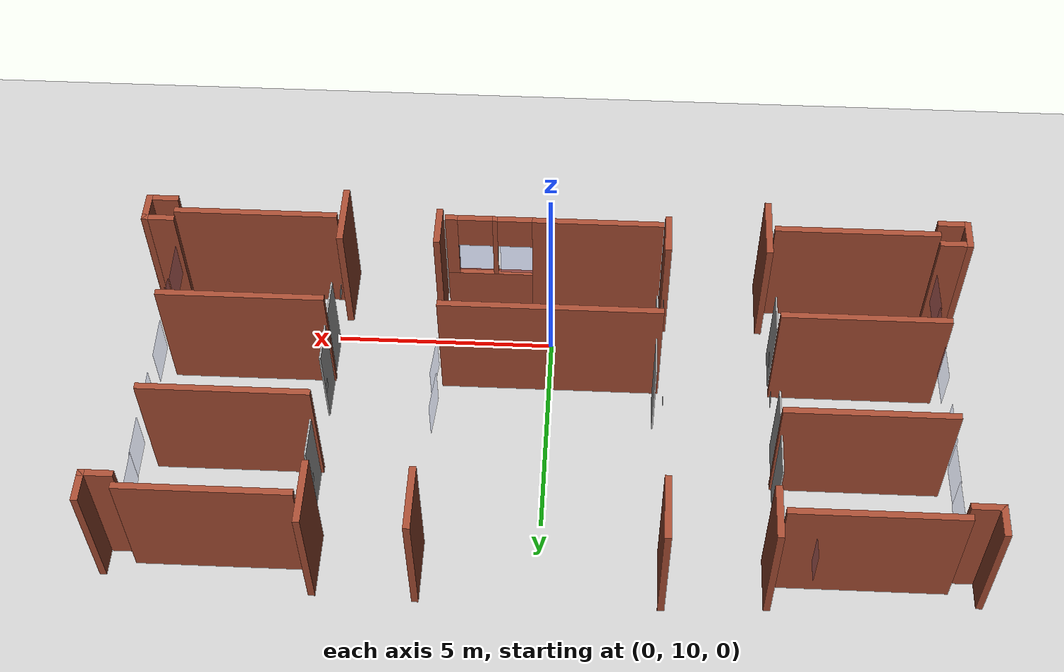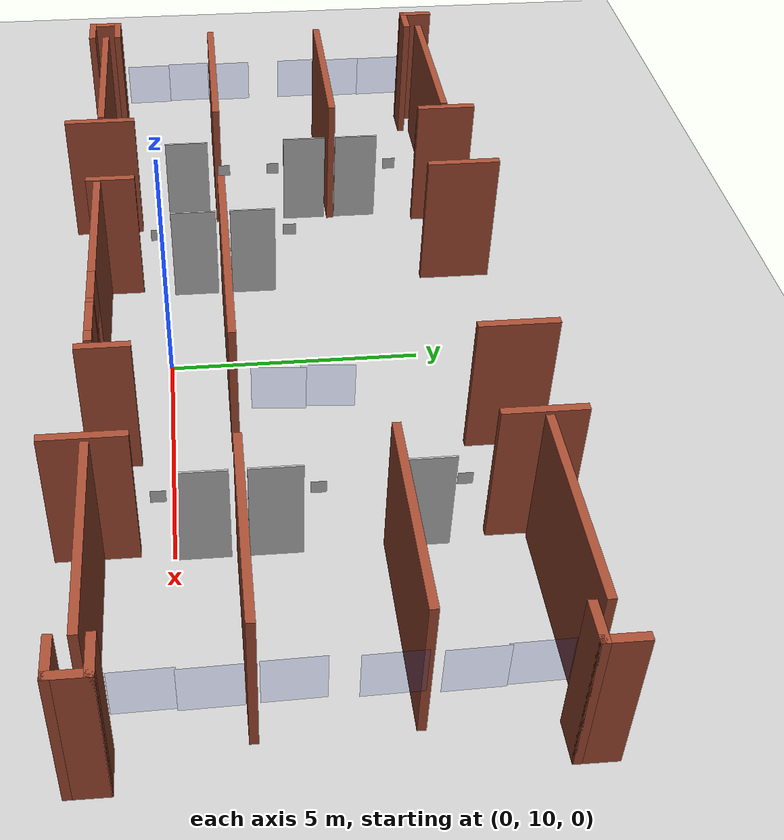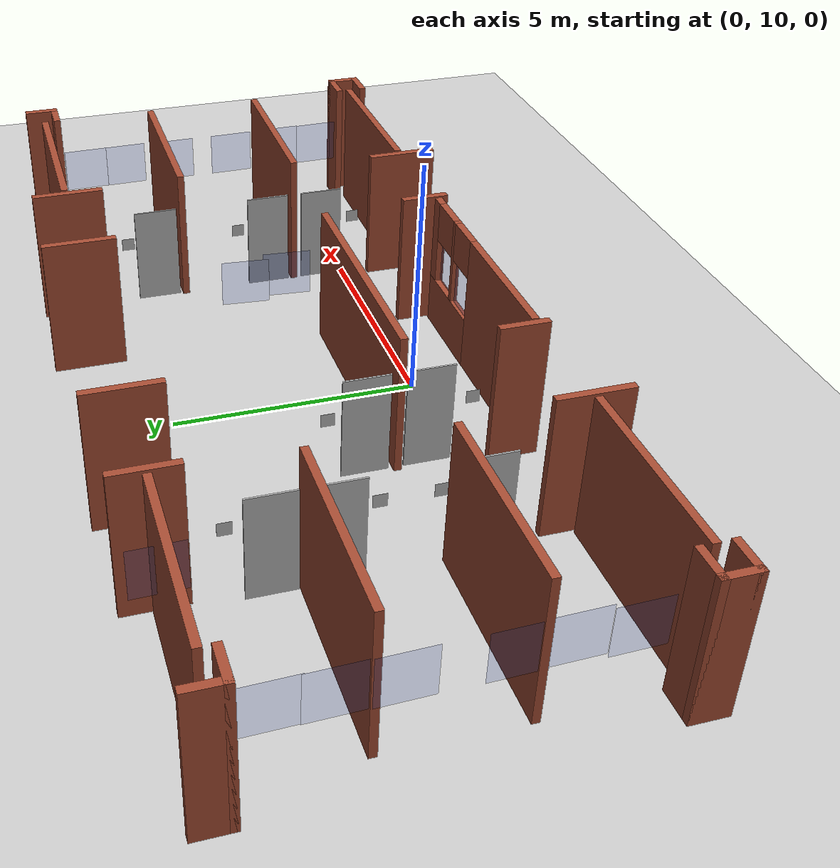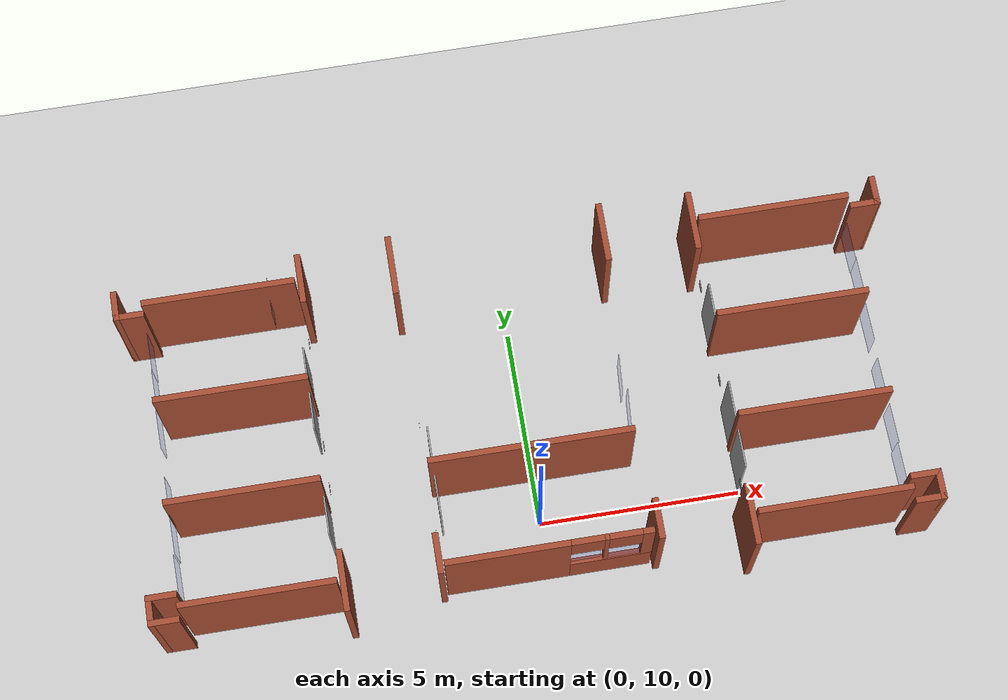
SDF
<sdf version="1.6">
 <world name="default">
  <model name="ground_plane">
   <static>1</static>
   <link name="link">
    <collision name="collision">
     <geometry><plane><normal>0 0 1</normal><size>100 100</size></plane></geometry>
     <surface><friction><ode><mu>100</mu><mu2>50</mu2></ode></friction></surface>
    </collision>
    <visual name="visual">
     <cast_shadows>0</cast_shadows>
     <geometry><plane><normal>0 0 1</normal><size>100 100</size></plane></geometry>
     <material>
      <script><uri>file://media/materials/scripts/gazebo.material</uri><name>Gazebo/Grey</name></script>
     </material>
    </visual>
   </link>
  </model>
  <model name="UNFRGS_INF_-_Predio_73">
   <pose>-0.02513 1.0401 -0.009 0 -0 0</pose>
   <link name="Wall_110">
    <collision name="Wall_110_Collision">
     <geometry><box><size>3.75 0.15 2.96</size></box></geometry>
     <pose>0 0 1.48 0 -0 0</pose>
    </collision>
    <visual name="Wall_110_Visual">
     <pose>0 0 1.48 0 -0 0</pose>
     <geometry><box><size>3.75 0.15 2.96</size></box></geometry>
     <material>
      <script><uri>file://media/materials/scripts/gazebo.material</uri><name>Gazebo/Bricks</name></script>
      <ambient>0.929412 1 0.760784 1</ambient>
     </material>
     <meta><layer>0</layer></meta>
    </visual>
    <pose>-6.88513 15.1948 0 0 -0 0</pose>
   </link>
   <link name="Wall_112">
    <collision name="Wall_112_Collision">
     <geometry><box><size>3.75 0.15 2.96</size></box></geometry>
     <pose>0 0 1.48 0 -0 0</pose>
    </collision>
    <visual name="Wall_112_Visual">
     <pose>0 0 1.48 0 -0 0</pose>
     <geometry><box><size>3.75 0.15 2.96</size></box></geometry>
     <material>
      <script><uri>file://media/materials/scripts/gazebo.material</uri><name>Gazebo/Bricks</name></script>
      <ambient>0.929412 1 0.760784 1</ambient>
     </material>
     <meta><layer>0</layer></meta>
    </visual>
    <pose>6.85987 15.2218 0 0 -0 0</pose>
   </link>
   <link name="Wall_114">
    <collision name="Wall_114_Collision">
     <geometry><box><size>1.25 0.15 2.96</size></box></geometry>
     <pose>0 0 1.48 0 -0 0</pose>
    </collision>
    <visual name="Wall_114_Visual">
     <pose>0 0 1.48 0 -0 0</pose>
     <geometry><box><size>1.25 0.15 2.96</size></box></geometry>
     <material>
      <script><uri>file://media/materials/scripts/gazebo.material</uri><name>Gazebo/Bricks</name></script>
      <ambient>0.929412 1 0.760784 1</ambient>
     </material>
     <meta><layer>0</layer></meta>
    </visual>
    <pose>-4.87113 15.2208 0 0 0 -1.5708</pose>
   </link>
   <link name="Wall_116">
    <collision name="Wall_116_Collision">
     <geometry><box><size>1.5 0.15 2.96</size></box></geometry>
     <pose>0 0 1.48 0 -0 0</pose>
    </collision>
    <visual name="Wall_116_Visual">
     <pose>0 0 1.48 0 -0 0</pose>
     <geometry><box><size>1.5 0.15 2.96</size></box></geometry>
     <material>
      <script><uri>file://media/materials/scripts/gazebo.material</uri><name>Gazebo/Bricks</name></script>
      <ambient>0.929412 1 0.760784 1</ambient>
     </material>
     <meta><layer>0</layer></meta>
    </visual>
    <pose>-2.62213 15.2058 0 0 0 -1.5708</pose>
   </link>
   <link name="Wall_118">
    <collision name="Wall_118_Collision">
     <geometry><box><size>1.5 0.15 2.96</size></box></geometry>
     <pose>0 0 1.48 0 -0 0</pose>
    </collision>
    <visual name="Wall_118_Visual">
     <pose>0 0 1.48 0 -0 0</pose>
     <geometry><box><size>1.5 0.15 2.96</size></box></geometry>
     <material>
      <script><uri>file://media/materials/scripts/gazebo.material</uri><name>Gazebo/Bricks</name></script>
      <ambient>0.929412 1 0.760784 1</ambient>
     </material>
     <meta><layer>0</layer></meta>
    </visual>
    <pose>2.61787 15.2302 0 0 0 -1.5708</pose>
   </link>
   <link name="Wall_120">
    <collision name="Wall_120_Collision">
     <geometry><box><size>1.5 0.15 2.96</size></box></geometry>
     <pose>0 0 1.48 0 -0 0</pose>
    </collision>
    <visual name="Wall_120_Visual">
     <pose>0 0 1.48 0 -0 0</pose>
     <geometry><box><size>1.5 0.15 2.96</size></box></geometry>
     <material>
      <script><uri>file://media/materials/scripts/gazebo.material</uri><name>Gazebo/Bricks</name></script>
      <ambient>0.929412 1 0.760784 1</ambient>
     </material>
     <meta><layer>0</layer></meta>
    </visual>
    <pose>4.84087 15.1778 0 0 0 -1.5708</pose>
   </link>
   <link name="Wall_122">
    <collision name="Wall_122_Collision">
     <geometry><box><size>3.75 0.15 2.96</size></box></geometry>
     <pose>0 0 1.48 0 -0 0</pose>
    </collision>
    <visual name="Wall_122_Visual">
     <pose>0 0 1.48 0 -0 0</pose>
     <geometry><box><size>3.75 0.15 2.96</size></box></geometry>
     <material>
      <script><uri>file://media/materials/scripts/gazebo.material</uri><name>Gazebo/Bricks</name></script>
      <ambient>0.929412 1 0.760784 1</ambient>
     </material>
     <meta><layer>0</layer></meta>
    </visual>
    <pose>6.83287 12.6978 0 0 -0 0</pose>
   </link>
   <link name="Wall_124">
    <collision name="Wall_124_Collision">
     <geometry><box><size>3.75 0.15 2.96</size></box></geometry>
     <pose>0 0 1.48 0 -0 0</pose>
    </collision>
    <visual name="Wall_124_Visual">
     <pose>0 0 1.48 0 -0 0</pose>
     <geometry><box><size>3.75 0.15 2.96</size></box></geometry>
     <material>
      <script><uri>file://media/materials/scripts/gazebo.material</uri><name>Gazebo/Bricks</name></script>
      <ambient>0.929412 1 0.760784 1</ambient>
     </material>
     <meta><layer>0</layer></meta>
    </visual>
    <pose>-6.88513 12.6978 0 0 -0 0</pose>
   </link>
   <link name="Wall_126">
    <collision name="Wall_126_Collision">
     <geometry><box><size>3.75 0.15 2.96</size></box></geometry>
     <pose>0 0 1.48 0 -0 0</pose>
    </collision>
    <visual name="Wall_126_Visual">
     <pose>0 0 1.48 0 -0 0</pose>
     <geometry><box><size>3.75 0.15 2.96</size></box></geometry>
     <material>
      <script><uri>file://media/materials/scripts/gazebo.material</uri><name>Gazebo/Bricks</name></script>
      <ambient>0.929412 1 0.760784 1</ambient>
     </material>
     <meta><layer>0</layer></meta>
    </visual>
    <pose>6.85987 10.1188 0 0 -0 0</pose>
   </link>
   <link name="Wall_128">
    <collision name="Wall_128_Collision">
     <geometry><box><size>3.75 0.15 2.96</size></box></geometry>
     <pose>0 0 1.48 0 -0 0</pose>
    </collision>
    <visual name="Wall_128_Visual">
     <pose>0 0 1.48 0 -0 0</pose>
     <geometry><box><size>3.75 0.15 2.96</size></box></geometry>
     <material>
      <script><uri>file://media/materials/scripts/gazebo.material</uri><name>Gazebo/Bricks</name></script>
      <ambient>0.929412 1 0.760784 1</ambient>
     </material>
     <meta><layer>0</layer></meta>
    </visual>
    <pose>-6.88513 7.62278 0 0 -0 0</pose>
   </link>
   <link name="Wall_130">
    <collision name="Wall_130_Collision">
     <geometry><box><size>1 0.15 2.96</size></box></geometry>
     <pose>0 0 1.48 0 -0 0</pose>
    </collision>
    <visual name="Wall_130_Visual">
     <pose>0 0 1.48 0 -0 0</pose>
     <geometry><box><size>1 0.15 2.96</size></box></geometry>
     <material>
      <script><uri>file://media/materials/scripts/gazebo.material</uri><name>Gazebo/Bricks</name></script>
      <ambient>0.929412 1 0.760784 1</ambient>
     </material>
     <meta><layer>0</layer></meta>
    </visual>
    <pose>2.64587 7.88278 0 0 0 -1.5708</pose>
   </link>
   <link name="Wall_132">
    <collision name="Wall_132_Collision">
     <geometry><box><size>1 0.15 2.96</size></box></geometry>
     <pose>0 0 1.48 0 -0 0</pose>
    </collision>
    <visual name="Wall_132_Visual">
     <pose>0 0 1.48 0 -0 0</pose>
     <geometry><box><size>1 0.15 2.96</size></box></geometry>
     <material>
      <script><uri>file://media/materials/scripts/gazebo.material</uri><name>Gazebo/Bricks</name></script>
      <ambient>0.929412 1 0.760784 1</ambient>
     </material>
     <meta><layer>0</layer></meta>
    </visual>
    <pose>-2.59413 7.88278 0 0 0 -1.5708</pose>
   </link>
   <link name="Wall_134">
    <collision name="Wall_134_Collision">
     <geometry><box><size>3.75 0.15 2.96</size></box></geometry>
     <pose>0 0 1.48 0 -0 0</pose>
    </collision>
    <visual name="Wall_134_Visual">
     <pose>0 0 1.48 0 -0 0</pose>
     <geometry><box><size>3.75 0.15 2.96</size></box></geometry>
     <material>
      <script><uri>file://media/materials/scripts/gazebo.material</uri><name>Gazebo/Bricks</name></script>
      <ambient>0.929412 1 0.760784 1</ambient>
     </material>
     <meta><layer>0</layer></meta>
    </visual>
    <pose>6.85987 7.67678 0 0 -0 0</pose>
   </link>
   <link name="Wall_167">
    <collision name="Wall_167_Collision">
     <geometry><box><size>1.5 0.15 2.96</size></box></geometry>
     <pose>0 0 1.48 0 -0 0</pose>
    </collision>
    <visual name="Wall_167_Visual">
     <pose>0 0 1.48 0 -0 0</pose>
     <geometry><box><size>1.5 0.15 2.96</size></box></geometry>
     <material>
      <script><uri>file://media/materials/scripts/gazebo.material</uri><name>Gazebo/Bricks</name></script>
      <ambient>0.929412 1 0.760784 1</ambient>
     </material>
     <meta><layer>0</layer></meta>
    </visual>
    <pose>-4.87113 7.59878 0 0 0 -1.5708</pose>
   </link>
   <link name="Wall_169">
    <collision name="Wall_169_Collision">
     <geometry><box><size>1.5 0.15 2.96</size></box></geometry>
     <pose>0 0 1.48 0 -0 0</pose>
    </collision>
    <visual name="Wall_169_Visual">
     <pose>0 0 1.48 0 -0 0</pose>
     <geometry><box><size>1.5 0.15 2.96</size></box></geometry>
     <material>
      <script><uri>file://media/materials/scripts/gazebo.material</uri><name>Gazebo/Bricks</name></script>
      <ambient>0.929412 1 0.760784 1</ambient>
     </material>
     <meta><layer>0</layer></meta>
    </visual>
    <pose>4.84687 7.63078 0 0 0 -1.5708</pose>
   </link>
   <link name="Wall_250">
    <collision name="Wall_250_Collision">
     <geometry><box><size>3.75 0.15 2.96</size></box></geometry>
     <pose>0 0 1.48 0 -0 0</pose>
    </collision>
    <visual name="Wall_250_Visual">
     <pose>0 0 1.48 0 -0 0</pose>
     <geometry><box><size>3.75 0.15 2.96</size></box></geometry>
     <material>
      <script><uri>file://media/materials/scripts/gazebo.material</uri><name>Gazebo/Bricks</name></script>
      <ambient>0.929412 1 0.760784 1</ambient>
     </material>
     <meta><layer>0</layer></meta>
    </visual>
    <pose>-6.93013 10.1328 0 0 -0 0</pose>
   </link>
   <link name="Wall_700">
    <collision name="Wall_700_Collision">
     <geometry><box><size>0.75 0.15 2.96</size></box></geometry>
     <pose>0 0 1.48 0 -0 0</pose>
    </collision>
    <visual name="Wall_700_Visual">
     <pose>0 0 1.48 0 -0 0</pose>
     <geometry><box><size>0.75 0.15 2.96</size></box></geometry>
     <material>
      <script><uri>file://media/materials/scripts/gazebo.material</uri><name>Gazebo/Bricks</name></script>
      <ambient>0.498039 0.498039 0.498039 1</ambient>
     </material>
     <meta><layer>0</layer></meta>
    </visual>
    <pose>-9.09213 7.89878 0 0 -0 3.14159</pose>
   </link>
   <link name="Wall_701">
    <collision name="Wall_701_Collision">
     <geometry><box><size>0.750269 0.15 2.96</size></box></geometry>
     <pose>0 0 1.48 0 -0 0</pose>
    </collision>
    <visual name="Wall_701_Visual">
     <pose>0 0 1.48 0 -0 0</pose>
     <geometry><box><size>0.750269 0.15 2.96</size></box></geometry>
     <material>
      <script><uri>file://media/materials/scripts/gazebo.material</uri><name>Gazebo/Bricks</name></script>
      <ambient>0.498039 0.498039 0.498039 1</ambient>
     </material>
     <meta><layer>0</layer></meta>
    </visual>
    <pose>-9.39213 7.59878 0 0 0 -1.5708</pose>
   </link>
   <link name="Wall_702">
    <collision name="Wall_702_Collision">
     <geometry><box><size>0.75 0.15 2.96</size></box></geometry>
     <pose>0 0 1.48 0 -0 0</pose>
    </collision>
    <visual name="Wall_702_Visual">
     <pose>0 0 1.48 0 -0 0</pose>
     <geometry><box><size>0.75 0.15 2.96</size></box></geometry>
     <material>
      <script><uri>file://media/materials/scripts/gazebo.material</uri><name>Gazebo/Bricks</name></script>
      <ambient>0.498039 0.498039 0.498039 1</ambient>
     </material>
     <meta><layer>0</layer></meta>
    </visual>
    <pose>-9.09213 7.29878 0 0 -0 0</pose>
   </link>
   <link name="Wall_705">
    <collision name="Wall_705_Collision">
     <geometry><box><size>0.75 0.15 2.96</size></box></geometry>
     <pose>0 0 1.48 0 -0 0</pose>
    </collision>
    <visual name="Wall_705_Visual">
     <pose>0 0 1.48 0 -0 0</pose>
     <geometry><box><size>0.75 0.15 2.96</size></box></geometry>
     <material>
      <script><uri>file://media/materials/scripts/gazebo.material</uri><name>Gazebo/Bricks</name></script>
      <ambient>0.498039 0.498039 0.498039 1</ambient>
     </material>
     <meta><layer>0</layer></meta>
    </visual>
    <pose>-9.39213 15.2228 0 0 0 -1.5708</pose>
   </link>
   <link name="Wall_706">
    <collision name="Wall_706_Collision">
     <geometry><box><size>0.75 0.15 2.96</size></box></geometry>
     <pose>0 0 1.48 0 -0 0</pose>
    </collision>
    <visual name="Wall_706_Visual">
     <pose>0 0 1.48 0 -0 0</pose>
     <geometry><box><size>0.75 0.15 2.96</size></box></geometry>
     <material>
      <script><uri>file://media/materials/scripts/gazebo.material</uri><name>Gazebo/Bricks</name></script>
      <ambient>0.498039 0.498039 0.498039 1</ambient>
     </material>
     <meta><layer>0</layer></meta>
    </visual>
    <pose>-9.09213 14.9228 0 0 -0 0</pose>
   </link>
   <link name="Wall_709">
    <collision name="Wall_709_Collision">
     <geometry><box><size>0.75 0.15 2.96</size></box></geometry>
     <pose>0 0 1.48 0 -0 0</pose>
    </collision>
    <visual name="Wall_709_Visual">
     <pose>0 0 1.48 0 -0 0</pose>
     <geometry><box><size>0.75 0.15 2.96</size></box></geometry>
     <material>
      <script><uri>file://media/materials/scripts/gazebo.material</uri><name>Gazebo/Bricks</name></script>
      <ambient>0.498039 0.498039 0.498039 1</ambient>
     </material>
     <meta><layer>0</layer></meta>
    </visual>
    <pose>9.39287 15.2368 0 0 0 -1.5708</pose>
   </link>
   <link name="Wall_710">
    <collision name="Wall_710_Collision">
     <geometry><box><size>0.75 0.15 2.96</size></box></geometry>
     <pose>0 0 1.48 0 -0 0</pose>
    </collision>
    <visual name="Wall_710_Visual">
     <pose>0 0 1.48 0 -0 0</pose>
     <geometry><box><size>0.75 0.15 2.96</size></box></geometry>
     <material>
      <script><uri>file://media/materials/scripts/gazebo.material</uri><name>Gazebo/Bricks</name></script>
      <ambient>0.498039 0.498039 0.498039 1</ambient>
     </material>
     <meta><layer>0</layer></meta>
    </visual>
    <pose>9.09287 14.9368 0 0 -0 3.14159</pose>
   </link>
   <link name="Wall_712">
    <collision name="Wall_712_Collision">
     <geometry><box><size>0.75 0.15 2.96</size></box></geometry>
     <pose>0 0 1.48 0 -0 0</pose>
    </collision>
    <visual name="Wall_712_Visual">
     <pose>0 0 1.48 0 -0 0</pose>
     <geometry><box><size>0.75 0.15 2.96</size></box></geometry>
     <material>
      <script><uri>file://media/materials/scripts/gazebo.material</uri><name>Gazebo/Bricks</name></script>
      <ambient>0.498039 0.498039 0.498039 1</ambient>
     </material>
     <meta><layer>0</layer></meta>
    </visual>
    <pose>9.06387 7.92778 0 0 -0 0</pose>
   </link>
   <link name="Wall_713">
    <collision name="Wall_713_Collision">
     <geometry><box><size>0.75 0.15 2.96</size></box></geometry>
     <pose>0 0 1.48 0 -0 0</pose>
    </collision>
    <visual name="Wall_713_Visual">
     <pose>0 0 1.48 0 -0 0</pose>
     <geometry><box><size>0.75 0.15 2.96</size></box></geometry>
     <material>
      <script><uri>file://media/materials/scripts/gazebo.material</uri><name>Gazebo/Bricks</name></script>
      <ambient>0.498039 0.498039 0.498039 1</ambient>
     </material>
     <meta><layer>0</layer></meta>
    </visual>
    <pose>9.36387 7.62778 0 0 0 -1.5708</pose>
   </link>
   <link name="Wall_714">
    <collision name="Wall_714_Collision">
     <geometry><box><size>0.75 0.15 2.96</size></box></geometry>
     <pose>0 0 1.48 0 -0 0</pose>
    </collision>
    <visual name="Wall_714_Visual">
     <pose>0 0 1.48 0 -0 0</pose>
     <geometry><box><size>0.75 0.15 2.96</size></box></geometry>
     <material>
      <script><uri>file://media/materials/scripts/gazebo.material</uri><name>Gazebo/Bricks</name></script>
      <ambient>0.498039 0.498039 0.498039 1</ambient>
     </material>
     <meta><layer>0</layer></meta>
    </visual>
    <pose>9.06387 7.32778 0 0 -0 3.14159</pose>
   </link>
   <link name="Wall_76">
    <pose>0.009867 7.62278 0 0 -0 0</pose>
    <visual name="Wall_76_Visual_0">
     <pose>-0.99541 0 1.48 0 -0 0</pose>
     <geometry><box><size>3.00918 0.15 2.96</size></box></geometry>
     <material>
      <script><uri>file://media/materials/scripts/gazebo.material</uri><name>Gazebo/Bricks</name></script>
      <ambient>0.929412 1 0.760784 1</ambient>
     </material>
     <meta><layer>0</layer></meta>
    </visual>
    <collision name="Wall_76_Collision_0">
     <geometry><box><size>3.00918 0.15 2.96</size></box></geometry>
     <pose>-0.99541 0 1.48 0 -0 0</pose>
    </collision>
    <visual name="Wall_76_Visual_1">
     <pose>1.50459 0 0.55 0 -0 0</pose>
     <geometry><box><size>1.99082 0.15 1.11</size></box></geometry>
     <material>
      <script><uri>file://media/materials/scripts/gazebo.material</uri><name>Gazebo/Bricks</name></script>
      <ambient>0.929412 1 0.760784 1</ambient>
     </material>
     <meta><layer>0</layer></meta>
    </visual>
    <collision name="Wall_76_Collision_1">
     <geometry><box><size>1.99082 0.15 1.11</size></box></geometry>
     <pose>1.50459 0 0.55 0 -0 0</pose>
    </collision>
    <visual name="Wall_76_Visual_2">
     <pose>1.36359 0 2.03 0 -0 0</pose>
     <geometry><box><size>0.108823 0.15 1.86</size></box></geometry>
     <material>
      <script><uri>file://media/materials/scripts/gazebo.material</uri><name>Gazebo/Bricks</name></script>
      <ambient>0.929412 1 0.760784 1</ambient>
     </material>
     <meta><layer>0</layer></meta>
    </visual>
    <collision name="Wall_76_Collision_2">
     <geometry><box><size>0.108823 0.15 1.86</size></box></geometry>
     <pose>1.36359 0 2.03 0 -0 0</pose>
    </collision>
    <visual name="Wall_76_Visual_3">
     <pose>2.359 0 2.03 0 -0 0</pose>
     <geometry><box><size>0.281997 0.15 1.86</size></box></geometry>
     <material>
      <script><uri>file://media/materials/scripts/gazebo.material</uri><name>Gazebo/Bricks</name></script>
      <ambient>0.929412 1 0.760784 1</ambient>
     </material>
     <meta><layer>0</layer></meta>
    </visual>
    <collision name="Wall_76_Collision_3">
     <geometry><box><size>0.281997 0.15 1.86</size></box></geometry>
     <pose>2.359 0 2.03 0 -0 0</pose>
    </collision>
    <visual name="Wall_76_Visual_4">
     <pose>0.90918 0 2.53 0 -0 0</pose>
     <geometry><box><size>0.8 0.15 0.86</size></box></geometry>
     <material>
      <script><uri>file://media/materials/scripts/gazebo.material</uri><name>Gazebo/Bricks</name></script>
      <ambient>0.929412 1 0.760784 1</ambient>
     </material>
     <meta><layer>0</layer></meta>
    </visual>
    <collision name="Wall_76_Collision_4">
     <geometry><box><size>0.8 0.15 0.86</size></box></geometry>
     <pose>0.90918 0 2.53 0 -0 0</pose>
    </collision>
    <visual name="Wall_76_Visual_5">
     <pose>1.818 0 2.53 0 -0 0</pose>
     <geometry><box><size>0.8 0.15 0.86</size></box></geometry>
     <material>
      <script><uri>file://media/materials/scripts/gazebo.material</uri><name>Gazebo/Bricks</name></script>
      <ambient>0.929412 1 0.760784 1</ambient>
     </material>
     <meta><layer>0</layer></meta>
    </visual>
    <collision name="Wall_76_Collision_5">
     <geometry><box><size>0.8 0.15 0.86</size></box></geometry>
     <pose>1.818 0 2.53 0 -0 0</pose>
    </collision>
   </link>
   <link name="Wall_78">
    <collision name="Wall_78_Collision">
     <geometry><box><size>5 0.15 2.96</size></box></geometry>
     <pose>0 0 1.48 0 -0 0</pose>
    </collision>
    <visual name="Wall_78_Visual">
     <pose>0 0 1.48 0 -0 0</pose>
     <geometry><box><size>5 0.15 2.96</size></box></geometry>
     <material>
      <script><uri>file://media/materials/scripts/gazebo.material</uri><name>Gazebo/Bricks</name></script>
      <ambient>0.929412 1 0.760784 1</ambient>
     </material>
     <meta><layer>0</layer></meta>
    </visual>
    <pose>-0.005133 10.1468 0 0 -0 0</pose>
   </link>
   <static>1</static>
  </model>
  <model name="placa_215">
   <pose>4.88 15 1.48209 0 -0 1.57</pose>
   <static>1</static>
   <link name="link">
    <collision name="collision"><geometry><box><size>0.268 0.001 0.268</size></box></geometry></collision>
    <visual name="visual">
     <geometry><box><size>0.268 0.001 0.268</size></box></geometry>
     <material>
      <script>
       <uri>model://Placa_215/Materials/Scripts</uri>
       <uri>model://Placa_215/Materials/Textures</uri>
       <name>TexturaPlaca_215/Image</name>
      </script>
     </material>
    </visual>
   </link>
  </model>
  <model name="placa_216">
   <pose>-4.96 15.05 1.48208 0 -0 1.57</pose>
   <static>1</static>
   <link name="link">
    <collision name="collision"><geometry><box><size>0.268 0.001 0.268</size></box></geometry></collision>
    <visual name="visual">
     <geometry><box><size>0.268 0.001 0.268</size></box></geometry>
     <material>
      <script>
       <uri>model://Placa_216/Materials/Scripts</uri>
       <uri>model://Placa_216/Materials/Textures</uri>
       <name>TexturaPlaca_216/Image</name>
      </script>
     </material>
    </visual>
   </link>
  </model>
  <model name="placa_217">
   <pose>4.88 12.5 1.48209 0 -0 1.57</pose>
   <static>1</static>
   <link name="link">
    <collision name="collision"><geometry><box><size>0.268 0.001 0.268</size></box></geometry></collision>
    <visual name="visual">
     <geometry><box><size>0.268 0.001 0.268</size></box></geometry>
     <material>
      <script>
       <uri>model://Placa_217/Materials/Scripts</uri>
       <uri>model://Placa_217/Materials/Textures</uri>
       <name>TexturaPlaca_217/Image</name>
      </script>
     </material>
    </visual>
   </link>
  </model>
  <model name="placa_218">
   <pose>-4.96 12.4 1.48208 0 -0 1.57</pose>
   <static>1</static>
   <link name="link">
    <collision name="collision"><geometry><box><size>0.268 0.001 0.268</size></box></geometry></collision>
    <visual name="visual">
     <geometry><box><size>0.268 0.001 0.268</size></box></geometry>
     <material>
      <script>
       <uri>model://Placa_218/Materials/Scripts</uri>
       <uri>model://Placa_218/Materials/Textures</uri>
       <name>TexturaPlaca_218/Image</name>
      </script>
     </material>
    </visual>
   </link>
  </model>
  <model name="placa_219">
   <pose>4.88 9.8 1.48209 0 -0 1.57</pose>
   <static>1</static>
   <link name="link">
    <collision name="collision"><geometry><box><size>0.268 0.001 0.268</size></box></geometry></collision>
    <visual name="visual">
     <geometry><box><size>0.268 0.001 0.268</size></box></geometry>
     <material>
      <script>
       <uri>model://Placa_219/Materials/Scripts</uri>
       <uri>model://Placa_219/Materials/Textures</uri>
       <name>TexturaPlaca_219/Image</name>
      </script>
     </material>
    </visual>
   </link>
  </model>
  <model name="placa_220">
   <pose>-2.58 12.6 1.48209 0 -0 1.57</pose>
   <static>1</static>
   <link name="link">
    <collision name="collision"><geometry><box><size>0.268 0.001 0.268</size></box></geometry></collision>
    <visual name="visual">
     <geometry><box><size>0.268 0.001 0.268</size></box></geometry>
     <material>
      <script>
       <uri>model://Placa_220/Materials/Scripts</uri>
       <uri>model://Placa_220/Materials/Textures</uri>
       <name>TexturaPlaca_220/Image</name>
      </script>
     </material>
    </visual>
   </link>
  </model>
  <model name="placa_222">
   <pose>-4.96 11.3 1.48208 0 -0 1.57</pose>
   <static>1</static>
   <link name="link">
    <collision name="collision"><geometry><box><size>0.268 0.001 0.268</size></box></geometry></collision>
    <visual name="visual">
     <geometry><box><size>0.268 0.001 0.268</size></box></geometry>
     <material>
      <script>
       <uri>model://Placa_222/Materials/Scripts</uri>
       <uri>model://Placa_222/Materials/Textures</uri>
       <name>TexturaPlaca_222/Image</name>
      </script>
     </material>
    </visual>
   </link>
  </model>
  <model name="placa_224">
   <pose>-2.58 9.8 1.48209 0 -0 1.57</pose>
   <static>1</static>
   <link name="link">
    <collision name="collision"><geometry><box><size>0.268 0.001 0.268</size></box></geometry></collision>
    <visual name="visual">
     <geometry><box><size>0.268 0.001 0.268</size></box></geometry>
     <material>
      <script>
       <uri>model://Placa_224/Materials/Scripts</uri>
       <uri>model://Placa_224/Materials/Textures</uri>
       <name>TexturaPlaca_224/Image</name>
      </script>
     </material>
    </visual>
   </link>
  </model>
  <model name="PortaInternaDireita_1">
   <pose>-5.1 14.3 1.075 0 -0 1.57</pose>
   <static>1</static>
   <link name="link">
    <collision name="collision"><geometry><box><size>2.15 3.5 0.94</size></box></geometry></collision>
    <visual name="visual">
     <geometry><box><size>0.94 0.035 2.15</size></box></geometry>
     <material>
      <script>
       <uri>model://PortaInternaDireita/materials/scripts</uri>
       <uri>model://PortaInternaDireita/materials/textures</uri>
       <name>TexturaPortaInternaDireita/Image</name>
      </script>
     </material>
    </visual>
   </link>
  </model>
  <model name="PortaInternaEsquerda_2">
   <pose>-5.1 13.13 1.075 0 -0 1.57</pose>
   <static>1</static>
   <link name="link">
    <collision name="collision"><geometry><box><size>2.15 3.5 0.94</size></box></geometry></collision>
    <visual name="visual">
     <geometry><box><size>0.94 0.035 2.15</size></box></geometry>
     <material>
      <script>
       <uri>model://PortaInternaEsquerda/materials/scripts</uri>
       <uri>model://PortaInternaEsquerda/materials/textures</uri>
       <name>TexturaPortaInternaEsquerda/Image</name>
      </script>
     </material>
    </visual>
   </link>
  </model>
  <model name="PortaInternaEsquerda_3">
   <pose>-5.1 10.48 1.075 0 -0 1.57</pose>
   <static>1</static>
   <link name="link">
    <collision name="collision"><geometry><box><size>2.15 3.5 0.94</size></box></geometry></collision>
    <visual name="visual">
     <geometry><box><size>0.94 0.035 2.15</size></box></geometry>
     <material>
      <script>
       <uri>model://PortaInternaEsquerda/materials/scripts</uri>
       <uri>model://PortaInternaEsquerda/materials/textures</uri>
       <name>TexturaPortaInternaEsquerda/Image</name>
      </script>
     </material>
    </visual>
   </link>
  </model>
  <model name="PortaInternaDireita_13">
   <pose>5 10.52 1.075 0 -0 1.57</pose>
   <static>1</static>
   <link name="link">
    <collision name="collision"><geometry><box><size>2.15 3.5 0.94</size></box></geometry></collision>
    <visual name="visual">
     <geometry><box><size>0.94 0.035 2.15</size></box></geometry>
     <material>
      <script>
       <uri>model://PortaInternaDireita/materials/scripts</uri>
       <uri>model://PortaInternaDireita/materials/textures</uri>
       <name>TexturaPortaInternaDireita/Image</name>
      </script>
     </material>
    </visual>
   </link>
  </model>
  <model name="PortaInternaEsquerda_17">
   <pose>5 11.77 1.075 0 -0 1.57</pose>
   <static>1</static>
   <link name="link">
    <collision name="collision"><geometry><box><size>2.15 3.5 0.94</size></box></geometry></collision>
    <visual name="visual">
     <geometry><box><size>0.94 0.035 2.15</size></box></geometry>
     <material>
      <script>
       <uri>model://PortaInternaEsquerda/materials/scripts</uri>
       <uri>model://PortaInternaEsquerda/materials/textures</uri>
       <name>TexturaPortaInternaEsquerda/Image</name>
      </script>
     </material>
    </visual>
   </link>
  </model>
  <model name="PortaInternaEsquerda_18">
   <pose>5 14.34 1.075 0 -0 1.57</pose>
   <static>1</static>
   <link name="link">
    <collision name="collision"><geometry><box><size>2.15 3.5 0.94</size></box></geometry></collision>
    <visual name="visual">
     <geometry><box><size>0.94 0.035 2.15</size></box></geometry>
     <material>
      <script>
       <uri>model://PortaInternaEsquerda/materials/scripts</uri>
       <uri>model://PortaInternaEsquerda/materials/textures</uri>
       <name>TexturaPortaInternaEsquerda/Image</name>
      </script>
     </material>
    </visual>
   </link>
  </model>
  <model name="PortaInternaEsquerda_23">
   <pose>-2.41 11.81 1.075 0 -0 1.57</pose>
   <static>1</static>
   <link name="link">
    <collision name="collision"><geometry><box><size>2.15 3.5 0.94</size></box></geometry></collision>
    <visual name="visual">
     <geometry><box><size>0.94 0.035 2.15</size></box></geometry>
     <material>
      <script>
       <uri>model://PortaInternaEsquerda/materials/scripts</uri>
       <uri>model://PortaInternaEsquerda/materials/textures</uri>
       <name>TexturaPortaInternaEsquerda/Image</name>
      </script>
     </material>
    </visual>
   </link>
  </model>
  <model name="PortaInternaDireita_17">
   <pose>-2.41 10.57 1.075 0 -0 1.57</pose>
   <static>1</static>
   <link name="link">
    <collision name="collision"><geometry><box><size>2.15 3.5 0.94</size></box></geometry></collision>
    <visual name="visual">
     <geometry><box><size>0.94 0.035 2.15</size></box></geometry>
     <material>
      <script>
       <uri>model://PortaInternaDireita/materials/scripts</uri>
       <uri>model://PortaInternaDireita/materials/textures</uri>
       <name>TexturaPortaInternaDireita/Image</name>
      </script>
     </material>
    </visual>
   </link>
  </model>
  <model name="vidro_31">
   <pose>8.74463 9.57489 0.352905 0 0 -1.55</pose>
   <link name="Wall_2">
    <collision name="Wall_2_Collision">
     <geometry><box><size>1 0.001 1</size></box></geometry>
     <pose>0 0 1.25 0 -0 0</pose>
    </collision>
    <visual name="Wall_2_Visual">
     <pose>0 0 1.25 0 -0 0</pose>
     <transparency>0.8</transparency>
     <geometry><box><size>1 0.001 1</size></box></geometry>
     <material>
      <script><uri>file://media/materials/scripts/gazebo.material</uri><name>Gazebo/BlueTransparent</name></script>
      <ambient>0.1 0.1 0.1 0.1</ambient>
     </material>
     <meta><layer>0</layer></meta>
    </visual>
    <pose>0 0 0 0 -0 3.14159</pose>
   </link>
   <static>1</static>
  </model>
  <model name="vidro_32">
   <pose>8.76077 10.5558 0.347823 0 0 -1.55</pose>
   <link name="Wall_2">
    <collision name="Wall_2_Collision">
     <geometry><box><size>1 0.001 1</size></box></geometry>
     <pose>0 0 1.25 0 -0 0</pose>
    </collision>
    <visual name="Wall_2_Visual">
     <pose>0 0 1.25 0 -0 0</pose>
     <transparency>0.8</transparency>
     <geometry><box><size>1 0.001 1</size></box></geometry>
     <material>
      <script><uri>file://media/materials/scripts/gazebo.material</uri><name>Gazebo/BlueTransparent</name></script>
      <ambient>0.1 0.1 0.1 0.1</ambient>
     </material>
     <meta><layer>0</layer></meta>
    </visual>
    <pose>0 0 0 0 -0 3.14159</pose>
   </link>
   <static>1</static>
  </model>
  <model name="vidro_33">
   <pose>8.72223 11.7706 0.34797 0 0 -1.55</pose>
   <link name="Wall_2">
    <collision name="Wall_2_Collision">
     <geometry><box><size>1 0.001 1</size></box></geometry>
     <pose>0 0 1.25 0 -0 0</pose>
    </collision>
    <visual name="Wall_2_Visual">
     <pose>0 0 1.25 0 -0 0</pose>
     <transparency>0.8</transparency>
     <geometry><box><size>1 0.001 1</size></box></geometry>
     <material>
      <script><uri>file://media/materials/scripts/gazebo.material</uri><name>Gazebo/BlueTransparent</name></script>
      <ambient>0.1 0.1 0.1 0.1</ambient>
     </material>
     <meta><layer>0</layer></meta>
    </visual>
    <pose>0 0 0 0 -0 3.14159</pose>
   </link>
   <static>1</static>
  </model>
  <model name="vidro_34">
   <pose>8.73209 13.2336 0.340578 0 0 -1.55</pose>
   <link name="Wall_2">
    <collision name="Wall_2_Collision">
     <geometry><box><size>1 0.001 1</size></box></geometry>
     <pose>0 0 1.25 0 -0 0</pose>
    </collision>
    <visual name="Wall_2_Visual">
     <pose>0 0 1.25 0 -0 0</pose>
     <transparency>0.8</transparency>
     <geometry><box><size>1 0.001 1</size></box></geometry>
     <material>
      <script><uri>file://media/materials/scripts/gazebo.material</uri><name>Gazebo/BlueTransparent</name></script>
      <ambient>0.1 0.1 0.1 0.1</ambient>
     </material>
     <meta><layer>0</layer></meta>
    </visual>
    <pose>0 0 0 0 -0 3.14159</pose>
   </link>
   <static>1</static>
  </model>
  <model name="vidro_35">
   <pose>8.75218 14.4399 0.343686 0 0 -1.55</pose>
   <link name="Wall_2">
    <collision name="Wall_2_Collision">
     <geometry><box><size>1 0.001 1</size></box></geometry>
     <pose>0 0 1.25 0 -0 0</pose>
    </collision>
    <visual name="Wall_2_Visual">
     <pose>0 0 1.25 0 -0 0</pose>
     <transparency>0.8</transparency>
     <geometry><box><size>1 0.001 1</size></box></geometry>
     <material>
      <script><uri>file://media/materials/scripts/gazebo.material</uri><name>Gazebo/BlueTransparent</name></script>
      <ambient>0.1 0.1 0.1 0.1</ambient>
     </material>
     <meta><layer>0</layer></meta>
    </visual>
    <pose>0 0 0 0 -0 3.14159</pose>
   </link>
   <static>1</static>
  </model>
  <model name="vidro_36">
   <pose>8.7149 15.382 0.355408 0 0 -1.55</pose>
   <link name="Wall_2">
    <collision name="Wall_2_Collision">
     <geometry><box><size>1 0.001 1</size></box></geometry>
     <pose>0 0 1.25 0 -0 0</pose>
    </collision>
    <visual name="Wall_2_Visual">
     <pose>0 0 1.25 0 -0 0</pose>
     <transparency>0.8</transparency>
     <geometry><box><size>1 0.001 1</size></box></geometry>
     <material>
      <script><uri>file://media/materials/scripts/gazebo.material</uri><name>Gazebo/BlueTransparent</name></script>
      <ambient>0.1 0.1 0.1 0.1</ambient>
     </material>
     <meta><layer>0</layer></meta>
    </visual>
    <pose>0 0 0 0 -0 3.14159</pose>
   </link>
   <static>1</static>
  </model>
  <model name="vidro_57">
   <pose>-8.81863 15.2812 0.343722 0 0 -1.55</pose>
   <link name="Wall_2">
    <collision name="Wall_2_Collision">
     <geometry><box><size>1 0.001 1</size></box></geometry>
     <pose>0 0 1.25 0 -0 0</pose>
    </collision>
    <visual name="Wall_2_Visual">
     <pose>0 0 1.25 0 -0 0</pose>
     <transparency>0.8</transparency>
     <geometry><box><size>1 0.001 1</size></box></geometry>
     <material>
      <script><uri>file://media/materials/scripts/gazebo.material</uri><name>Gazebo/BlueTransparent</name></script>
      <ambient>0.1 0.1 0.1 0.1</ambient>
     </material>
     <meta><layer>0</layer></meta>
    </visual>
    <pose>0 0 0 0 -0 3.14159</pose>
   </link>
   <static>1</static>
  </model>
  <model name="vidro_58">
   <pose>-8.81432 14.3422 0.344309 0 0 -1.55</pose>
   <link name="Wall_2">
    <collision name="Wall_2_Collision">
     <geometry><box><size>1 0.001 1</size></box></geometry>
     <pose>0 0 1.25 0 -0 0</pose>
    </collision>
    <visual name="Wall_2_Visual">
     <pose>0 0 1.25 0 -0 0</pose>
     <transparency>0.8</transparency>
     <geometry><box><size>1 0.001 1</size></box></geometry>
     <material>
      <script><uri>file://media/materials/scripts/gazebo.material</uri><name>Gazebo/BlueTransparent</name></script>
      <ambient>0.1 0.1 0.1 0.1</ambient>
     </material>
     <meta><layer>0</layer></meta>
    </visual>
    <pose>0 0 0 0 -0 3.14159</pose>
   </link>
   <static>1</static>
  </model>
  <model name="vidro_59">
   <pose>-8.82593 13.2978 0.357679 0 0 -1.55</pose>
   <link name="Wall_2">
    <collision name="Wall_2_Collision">
     <geometry><box><size>1 0.001 1</size></box></geometry>
     <pose>0 0 1.25 0 -0 0</pose>
    </collision>
    <visual name="Wall_2_Visual">
     <pose>0 0 1.25 0 -0 0</pose>
     <transparency>0.8</transparency>
     <geometry><box><size>1 0.001 1</size></box></geometry>
     <material>
      <script><uri>file://media/materials/scripts/gazebo.material</uri><name>Gazebo/BlueTransparent</name></script>
      <ambient>0.1 0.1 0.1 0.1</ambient>
     </material>
     <meta><layer>0</layer></meta>
    </visual>
    <pose>0 0 0 0 -0 3.14159</pose>
   </link>
   <static>1</static>
  </model>
  <model name="vidro_60">
   <pose>-8.80766 11.5726 0.355412 0 0 -1.55</pose>
   <link name="Wall_2">
    <collision name="Wall_2_Collision">
     <geometry><box><size>1 0.001 1</size></box></geometry>
     <pose>0 0 1.25 0 -0 0</pose>
    </collision>
    <visual name="Wall_2_Visual">
     <pose>0 0 1.25 0 -0 0</pose>
     <transparency>0.8</transparency>
     <geometry><box><size>1 0.001 1</size></box></geometry>
     <material>
      <script><uri>file://media/materials/scripts/gazebo.material</uri><name>Gazebo/BlueTransparent</name></script>
      <ambient>0.1 0.1 0.1 0.1</ambient>
     </material>
     <meta><layer>0</layer></meta>
    </visual>
    <pose>0 0 0 0 -0 3.14159</pose>
   </link>
   <static>1</static>
  </model>
  <model name="vidro_61">
   <pose>-8.79265 10.6244 0.38953 0 0 -1.55</pose>
   <link name="Wall_2">
    <collision name="Wall_2_Collision">
     <geometry><box><size>1 0.001 1</size></box></geometry>
     <pose>0 0 1.25 0 -0 0</pose>
    </collision>
    <visual name="Wall_2_Visual">
     <pose>0 0 1.25 0 -0 0</pose>
     <transparency>0.8</transparency>
     <geometry><box><size>1 0.001 1</size></box></geometry>
     <material>
      <script><uri>file://media/materials/scripts/gazebo.material</uri><name>Gazebo/BlueTransparent</name></script>
      <ambient>0.1 0.1 0.1 0.1</ambient>
     </material>
     <meta><layer>0</layer></meta>
    </visual>
    <pose>0 0 0 0 -0 3.14159</pose>
   </link>
   <static>1</static>
  </model>
  <model name="vidro_62">
   <pose>-8.81367 9.63812 0.348779 0 0 -1.55</pose>
   <link name="Wall_2">
    <collision name="Wall_2_Collision">
     <geometry><box><size>1 0.001 1</size></box></geometry>
     <pose>0 0 1.25 0 -0 0</pose>
    </collision>
    <visual name="Wall_2_Visual">
     <pose>0 0 1.25 0 -0 0</pose>
     <transparency>0.8</transparency>
     <geometry><box><size>1 0.001 1</size></box></geometry>
     <material>
      <script><uri>file://media/materials/scripts/gazebo.material</uri><name>Gazebo/BlueTransparent</name></script>
      <ambient>0.1 0.1 0.1 0.1</ambient>
     </material>
     <meta><layer>0</layer></meta>
    </visual>
    <pose>0 0 0 0 -0 3.14159</pose>
   </link>
   <static>1</static>
  </model>
  <model name="vidro_99">
   <pose>2.51256 11.9971 0.357001 0 0 -1.65</pose>
   <link name="Wall_2">
    <collision name="Wall_2_Collision">
     <geometry><box><size>1 0.001 1</size></box></geometry>
     <pose>0 0 1.25 0 -0 0</pose>
    </collision>
    <visual name="Wall_2_Visual">
     <pose>0 0 1.25 0 -0 0</pose>
     <transparency>0.8</transparency>
     <geometry><box><size>1 0.001 1</size></box></geometry>
     <material>
      <script><uri>file://media/materials/scripts/gazebo.material</uri><name>Gazebo/BlueTransparent</name></script>
      <ambient>0.1 0.1 0.1 0.1</ambient>
     </material>
     <meta><layer>0</layer></meta>
    </visual>
    <pose>0 0 0 0 -0 3.14159</pose>
   </link>
   <static>1</static>
  </model>
  <model name="vidro_100">
   <pose>2.45965 12.9042 0.310912 0 0 -1.65</pose>
   <link name="Wall_2">
    <collision name="Wall_2_Collision">
     <geometry><box><size>1 0.001 1</size></box></geometry>
     <pose>0 0 1.25 0 -0 0</pose>
    </collision>
    <visual name="Wall_2_Visual">
     <pose>0 0 1.25 0 -0 0</pose>
     <transparency>0.8</transparency>
     <geometry><box><size>1 0.001 1</size></box></geometry>
     <material>
      <script><uri>file://media/materials/scripts/gazebo.material</uri><name>Gazebo/BlueTransparent</name></script>
      <ambient>0.1 0.1 0.1 0.1</ambient>
     </material>
     <meta><layer>0</layer></meta>
    </visual>
    <pose>0 0 0 0 -0 3.14159</pose>
   </link>
   <static>1</static>
  </model>
  <model name="vidro_105">
   <pose>1.79526 8.61774 0.350319 0 -0 0</pose>
   <link name="Wall_2">
    <collision name="Wall_2_Collision">
     <geometry><box><size>1 0.001 1</size></box></geometry>
     <pose>0 0 1.25 0 -0 0</pose>
    </collision>
    <visual name="Wall_2_Visual">
     <pose>0 0 1.25 0 -0 0</pose>
     <transparency>0.8</transparency>
     <geometry><box><size>1 0.001 1</size></box></geometry>
     <material>
      <script><uri>file://media/materials/scripts/gazebo.material</uri><name>Gazebo/BlueTransparent</name></script>
      <ambient>0.1 0.1 0.1 0.1</ambient>
     </material>
     <meta><layer>0</layer></meta>
    </visual>
    <pose>0 0 0 0 -0 3.14159</pose>
   </link>
   <static>1</static>
  </model>
  <model name="vidro_106">
   <pose>0.743338 8.67166 0.355261 0 -0 0</pose>
   <link name="Wall_2">
    <collision name="Wall_2_Collision">
     <geometry><box><size>1 0.001 1</size></box></geometry>
     <pose>0 0 1.25 0 -0 0</pose>
    </collision>
    <visual name="Wall_2_Visual">
     <pose>0 0 1.25 0 -0 0</pose>
     <transparency>0.8</transparency>
     <geometry><box><size>1 0.001 1</size></box></geometry>
     <material>
      <script><uri>file://media/materials/scripts/gazebo.material</uri><name>Gazebo/BlueTransparent</name></script>
      <ambient>0.1 0.1 0.1 0.1</ambient>
     </material>
     <meta><layer>0</layer></meta>
    </visual>
    <pose>0 0 0 0 -0 3.14159</pose>
   </link>
   <static>1</static>
  </model>
  <model name="vidro_76_clone">
   <pose>-5.74379 16.2745 0.345445 0 0 -1.55</pose>
   <link name="Wall_2">
    <collision name="Wall_2_Collision">
     <geometry><box><size>1 0.001 1</size></box></geometry>
     <pose>0 0 1.25 0 -0 0</pose>
    </collision>
    <visual name="Wall_2_Visual">
     <pose>0 0 1.25 0 -0 0</pose>
     <transparency>0.8</transparency>
     <geometry><box><size>1 0.001 1</size></box></geometry>
     <material>
      <script><uri>file://media/materials/scripts/gazebo.material</uri><name>Gazebo/BlueTransparent</name></script>
      <ambient>0.1 0.1 0.1 0.1</ambient>
     </material>
     <meta><layer>0</layer></meta>
    </visual>
    <pose>0 0 0 0 -0 3.14159</pose>
   </link>
   <static>1</static>
  </model>
 </world>
</sdf>
